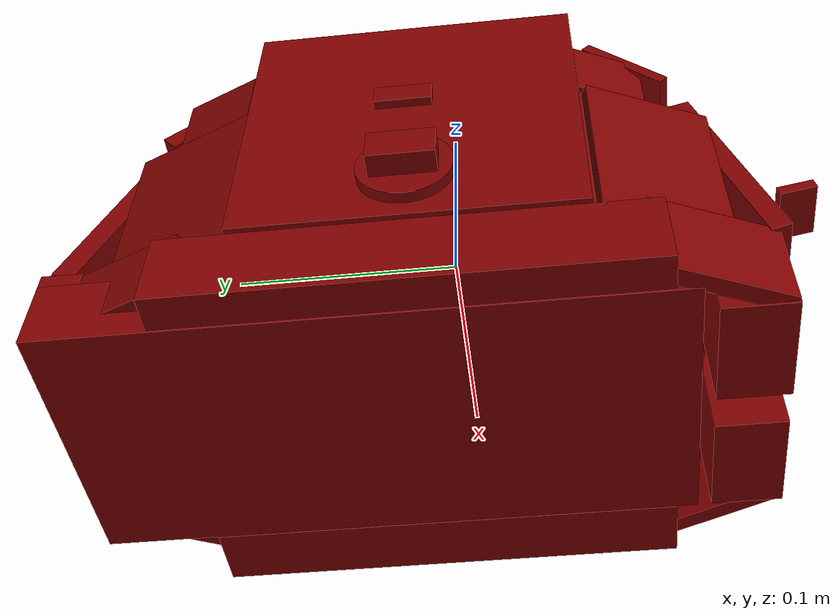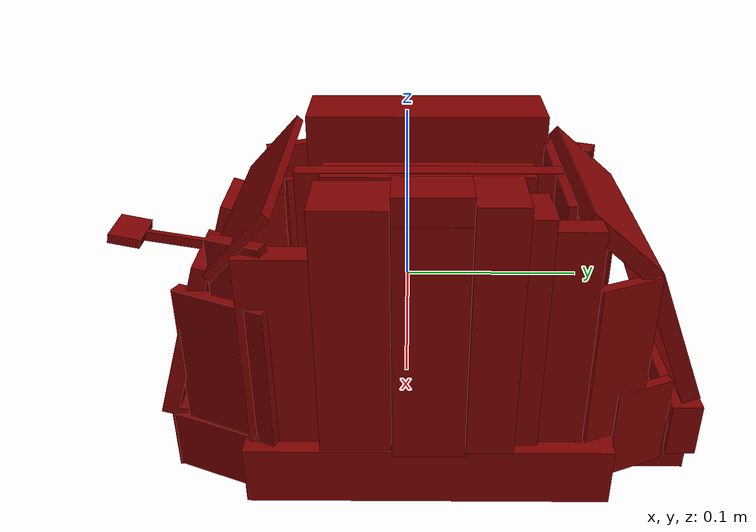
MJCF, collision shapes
<?xml version='1.0' encoding='UTF-8'?>
<mujoco model="model">
  <option timestep="0.002" gravity="0.0 0.0 -9.81"/>
  <compiler angle="radian"/>
  <asset>
    <mesh file="visuals/button_cancel.obj" name="button_cancel_vis"/>
    <mesh file="visuals/knob_doneness.obj" name="knob_doneness_vis"/>
    <mesh file="visuals/lever.obj" name="lever_vis"/>
    <mesh file="visuals/Body001.obj" name="Body001_vis"/>
    <texture file="visuals/T_BC001.png" name="Body001_material" type="2d"/>
    <material name="Body001_material" rgba="1 1 1 1.0" texture="Body001_material" shininess="0.1" specular="2"/>
    <texture file="visuals/T_BC001.png" name="button_cancel_material" type="2d"/>
    <material name="button_cancel_material" rgba="1 1 1 1.0" texture="button_cancel_material" shininess="0.1" specular="5"/>
    <texture file="visuals/T_BC001.png" name="knob_doneness_material" type="2d"/>
    <material name="knob_doneness_material" rgba="1 1 1 1.0" texture="knob_doneness_material" shininess="0.1" specular="5"/>
    <texture file="visuals/T_BC001.png" name="lever_material" type="2d"/>
    <material name="lever_material" rgba="1 1 1 1.0" texture="lever_material" shininess="0.1" specular="5"/>
  </asset>
  <default>
    <default class="visual">
      <geom conaffinity="0" contype="0" group="1" type="mesh"/>
    </default>
    <default class="collision">
      <geom group="0" rgba="0.5 0 0 0.5" density="1.0" solref="0.004 1" solimp="0.998 0.998 0.001"/>
    </default>
    <default class="spawn">
      <geom group="0" rgba="1 1 1 0.5" contype="0" conaffinity="0"/>
      <site group="0" rgba="1 1 1 0.5"/>
    </default>
    <default class="region">
      <geom group="1" conaffinity="0" contype="0" rgba="0 1 0 0" mass="0"/>
    </default>
  </default>
  <worldbody>
    <body>
      <body name="object">
        <geom mesh="Body001_vis" type="mesh" solimp="0.998 0.998 0.001" solref="0.001 1" friction="0.95 0.3 0.1" class="visual" material="Body001_material"/>
        <geom type="box" pos="0.07995411 0.01193782 -0.07610797" size="0.014542440883815289 0.10054586827754974 0.017481181770563126" quat="1.0 0.0 0.0 0.0" class="collision"/>
        <geom type="box" pos="0.00311299 0.03200804 -0.07755999" size="0.06174801290035248 0.1294039934873581 0.01602945849299431" quat="1.0 0.0 0.0 0.0" class="collision"/>
        <geom type="box" pos="-0.03007856 -0.11924477 -0.00821666" size="0.004592621233314276 0.022327106446027756 0.04812109097838402" quat="0.6995007991790771 -0.10343456268310547 -0.10343454033136368 -0.6995007395744324" class="collision"/>
        <geom type="box" pos="-0.05539701 0.01143686 0.01356997" size="0.021451249718666077 0.07161376625299454 0.07136571407318115" quat="1.0 0.0 0.0 0.0" class="collision"/>
        <geom type="box" pos="0.00817603 -0.08308579 0.05715346" size="0.002502724528312683 0.0726308599114418 0.02327120490372181" quat="0.6573383808135986 -0.26058828830718994 -0.26058831810951233 -0.6573383808135986" class="collision"/>
        <geom type="box" pos="0.00765685 0.10732802 0.05261945" size="0.0046866275370121 0.06454508751630783 0.024401754140853882" quat="0.6426793336868286 0.2948952317237854 0.2948951721191406 -0.6426794528961182" class="collision"/>
        <geom type="box" pos="0.00831358 0.14286351 -0.00553612" size="0.005211534909904003 0.05779324099421501 0.04224405437707901" quat="0.6941097974777222 0.13495059311389923 0.13495059311389923 -0.6941097378730774" class="collision"/>
        <geom type="box" pos="-0.06729573 0.01193782 -0.07610798" size="0.007737354375422001 0.09924645721912384 0.017481181770563126" quat="1.0 0.0 0.0 0.0" class="collision"/>
        <geom type="box" pos="0.07879391 0.01177473 0.01003026" size="0.020231017842888832 0.01929529942572117 0.06739110499620438" quat="1.0 0.0 0.0 0.0" class="collision"/>
        <geom type="box" pos="0.04466822 -0.11954803 -0.00821666" size="0.004592621233314276 0.022276654839515686 0.04812109097838402" quat="0.6995007991790771 -0.10343456268310547 -0.10343454033136368 -0.6995007395744324" class="collision"/>
        <geom type="box" pos="0.08637694 0.01177473 0.08507983" size="0.01264798641204834 0.01929529756307602 0.007232503034174442" quat="1.0 0.0 0.0 0.0" class="collision"/>
        <geom type="box" pos="0.07753234 0.04467372 0.01453649" size="0.018969442695379257 0.012852965854108334 0.07189734280109406" quat="1.0 0.0 0.0 0.0" class="collision"/>
        <geom type="box" pos="0.07401790 0.06425880 0.00991196" size="0.015615900978446007 0.006388598121702671 0.06727281212806702" quat="1.0 0.0 0.0 0.0" class="collision"/>
        <geom type="box" pos="0.07967458 0.08332032 0.00597270" size="0.00688891252502799 0.012129663489758968 0.06333354860544205" quat="1.0 0.0 0.0 0.0" class="collision"/>
        <geom type="box" pos="0.07569745 0.11273367 -0.01167273" size="0.0029117814265191555 0.018001191318035126 0.04792827367782593" quat="0.9785745143890381 0.0 0.0 0.2058929204940796" class="collision"/>
        <geom type="box" pos="0.07662286 -0.02727097 0.01324527" size="0.018188288435339928 0.01929529942572117 0.07042040675878525" quat="1.0 0.0 0.0 0.0" class="collision"/>
        <geom type="box" pos="0.07809008 -0.06650219 -0.00512851" size="0.007417436223477125 0.01929529383778572 0.0585048608481884" quat="1.0 0.0 0.0 0.0" class="collision"/>
        <geom type="box" pos="-0.06341299 -0.06461869 -0.01033434" size="0.015201675705611706 0.005573458503931761 0.04746139794588089" quat="0.8313593864440918 0.0 0.0 -0.555735170841217" class="collision"/>
        <geom type="box" pos="-0.05897756 0.10753660 -0.01552221" size="0.02807500772178173 0.005805022083222866 0.04227353259921074" quat="0.5618603825569153 0.0 0.0 -0.8272320628166199" class="collision"/>
        <geom type="box" pos="0.04986029 0.01143685 0.00527874" size="0.0032877642661333084 0.05927024409174919 0.06345353275537491" quat="1.0 0.0 0.0 0.0" class="collision"/>
        <geom type="box" pos="0.01537224 0.01143685 0.00527874" size="0.0032877642661333084 0.059270404279232025 0.06345353275537491" quat="1.0 0.0 0.0 0.0" class="collision"/>
        <geom type="box" pos="-0.00099103 0.01143685 0.00527874" size="0.0032877642661333084 0.05927056074142456 0.06345353275537491" quat="1.0 0.0 0.0 0.0" class="collision"/>
        <geom type="box" pos="0.00765641 0.08361254 0.00527874" size="0.04881077632308006 0.00226442888379097 0.06345444917678833" quat="1.0 0.0 0.0 0.0" class="collision"/>
        <geom type="box" pos="0.00742166 0.01143685 -0.08365900" size="0.041584741324186325 0.0592716820538044 0.0032878220081329346" quat="1.0 0.0 0.0 0.0" class="collision"/>
        <geom type="box" pos="0.00787915 0.01143685 0.00569410" size="0.005373402498662472 0.07400724291801453 0.06345353275537491" quat="1.0 0.0 0.0 0.0" class="collision"/>
        <geom type="box" pos="-0.02439034 -0.11795067 -0.07375142" size="0.024103136733174324 0.015007250010967255 0.020663296803832054" quat="1.0 0.0 0.0 0.0" class="collision"/>
        <geom type="box" pos="0.04034466 -0.11795067 -0.07345399" size="0.024103136733174324 0.015007233247160912 0.020365871489048004" quat="1.0 0.0 0.0 0.0" class="collision"/>
        <geom type="box" pos="0.00831358 0.15697702 -0.06382058" size="0.06075524911284447 0.008561155758798122 0.016415223479270935" quat="1.0 0.0 0.0 0.0" class="collision"/>
        <geom type="box" pos="-0.05370076 0.12809795 -0.06465111" size="0.02807500772178173 0.005805022083222866 0.016195213422179222" quat="0.5618603825569153 0.0 0.0 -0.8272320628166199" class="collision"/>
        <geom type="box" pos="-0.06134303 0.09898453 0.04252267" size="0.017378438264131546 0.005805022083222866 0.016195213422179222" quat="0.5618603825569153 0.0 0.0 -0.8272320628166199" class="collision"/>
        <geom type="box" pos="0.06939867 0.12976948 -0.05949153" size="0.0029117814265191555 0.018001191318035126 0.027560563758015633" quat="0.9785745143890381 0.0 0.0 0.2058929204940796" class="collision"/>
        <geom type="box" pos="-0.06140694 -0.08813035 -0.01844112" size="0.02807501144707203 0.003740153042599559 0.04227353259921074" quat="0.8322839736938477 3.382598715018226e-11 -6.188514978244797e-11 -0.5543495416641235" class="collision"/>
        <geom type="box" pos="-0.05755575 -0.10533379 -0.07333124" size="0.02807500772178173 0.003740153508260846 0.02017604000866413" quat="0.8322839736938477 3.382598715018226e-11 -6.188514978244797e-11 -0.5543495416641235" class="collision"/>
        <geom type="box" pos="-0.06446599 -0.07348762 0.04192634" size="0.015610792674124241 0.0037401539739221334 0.0159356277436018" quat="0.8322839736938477 3.382598715018226e-11 -6.188514978244797e-11 -0.5543495416641235" class="collision"/>
        <geom type="box" pos="0.07419545 -0.08480692 0.04192634" size="0.015610792674124241 0.00374015374109149 0.0159356277436018" quat="0.5618346333503723 7.995309275754536e-12 -7.007171232142895e-11 -0.8272495865821838" class="collision"/>
        <geom type="box" pos="0.07473908 -0.09567655 -0.01686900" size="0.02807501144707203 0.003740153042599559 0.04227353259921074" quat="0.5358457565307617 5.813076148913909e-12 -7.028639475992193e-11 -0.8443158864974976" class="collision"/>
        <geom type="box" pos="0.07192608 -0.10522326 -0.07449258" size="0.02807500772178173 0.003740153508260846 0.01844950206577778" quat="0.5495603680610657 6.959966023650788e-12 -7.018212400122792e-11 -0.8354540467262268" class="collision"/>
        <body name="button_cancel">
          <joint axis="1.0 0.0 0.0" pos="-0.08500830 0.01312438 0.01000324" limited="true" name="button_cancel_joint" range="0.0 0.002" type="slide" damping="1" frictionloss="1" armature=".01" stiffness="0.05"/>
          <geom mesh="button_cancel_vis" type="mesh" solimp="0.998 0.998 0.001" solref="0.001 1" friction="0.95 0.3 0.1" class="visual" material="button_cancel_material"/>
          <geom class="collision" type="box" pos="-0.08690453 0.01318413 0.01002965" size="0.0019101512152701616 0.012177031487226486 0.005377090536057949" quat="1.0 0.0 0.0 0.0" name="button_cancel_main"/>
        </body>
        <body name="knob_doneness">
          <joint axis="1.0 0.0 0.0" pos="-0.08609894 0.01071076 -0.04184528" limited="true" name="knob_doneness_joint" range="0.0 3.979350694547071" type="hinge" damping="0.05" armature="0.001"/>
          <geom mesh="knob_doneness_vis" type="mesh" solimp="0.998 0.998 0.001" solref="0.001 1" friction="0.95 0.3 0.1" class="visual" material="knob_doneness_material"/>
          <geom type="cylinder" pos="-0.08692267 0.01076015 -0.04184527" size="0.0195354912430048 0.0024004741571843624" quat="0.4999999701976776 0.5 -0.5 -0.5" class="collision"/>
          <geom class="collision" type="box" pos="-0.09418806 0.01101058 -0.04184405" size="0.005065132398158312 0.013607240281999111 0.0076972381211817265" quat="1.0 0.0 0.0 0.0" name="knob_doneness_main"/>
        </body>
        <body name="lever">
          <joint axis="0.0 0.0 -1.0" pos="0.00748828 -0.13677711 0.02645147" limited="true" name="lever_joint" range="0.0 0.057999999999999996" type="slide" damping="1" frictionloss="1" armature=".01" stiffness="2" springref="-0.5"/>
          <geom class="region" name="reg_slotL" type="box" pos="-0.01853674 0.009064249999999996 0.07333162" size="0.01455876 0.06996856 0.07599995999999999"/>
          <geom class="region" name="reg_slotR" type="box" pos="0.032481055 0.009064249999999996 0.07333162" size="0.014503105000000002 0.06996856 0.07599995999999999"/>
          <geom mesh="lever_vis" type="mesh" solimp="0.998 0.998 0.001" solref="0.001 1" friction="0.95 0.3 0.1" class="visual" material="lever_material"/>
          <geom class="collision" type="box" pos="0.03295042 0.01099688 -0.00219320" size="0.012846674770116806 0.06511877477169037 0.0004017333558294922" quat="1.0 0.0 0.0 0.0" name="slotR_floor"/>
          <geom class="collision" type="box" pos="0.00735475 -0.15952303 0.03060300" size="0.009018764831125736 0.013510518707334995 0.002691839588806033" quat="0.7032938003540039 -0.07333369553089142 -0.07333367317914963 -0.7032938003540039" name="lever_handle"/>
          <geom type="box" pos="0.00765657 -0.12821833 0.02461120" size="0.02304181642830372 0.0018287213752046227 0.0028551495634019375" quat="0.7046585083007812 -0.05879110470414162 -0.05879107862710953 -0.7046585083007812" class="collision"/>
          <geom class="collision" type="box" pos="-0.01914572 0.01099688 -0.00219320" size="0.012849891558289528 0.06512072682380676 0.0004017296014353633" quat="1.0 0.0 0.0 0.0" name="slotL_floor"/>
        </body>
        <geom class="region" name="reg_main" type="box" pos="0.007753155000000005 0.00948700000000001 0.0" size="0.096002595 0.16162326999999999 0.09458914"/>
      </body>
    </body>
  </worldbody>
  <actuator>
    <motor name="button_cancel_joint_actuator" joint="button_cancel_joint" gear="0.5"/>
    <motor name="knob_doneness_joint_actuator" joint="knob_doneness_joint" gear="0.5"/>
    <motor name="lever_joint_actuator" joint="lever_joint" gear="0.5"/>
  </actuator>
</mujoco>
